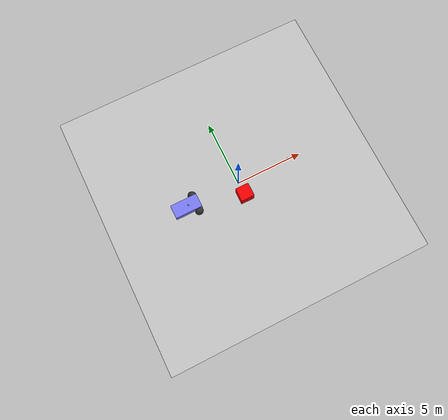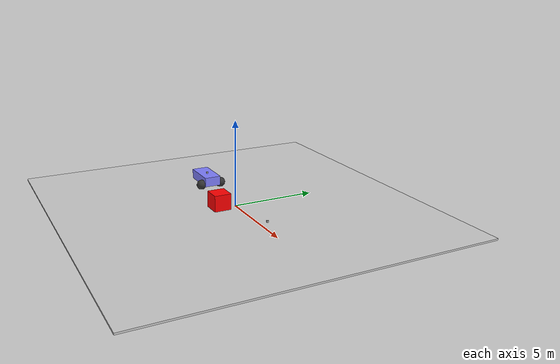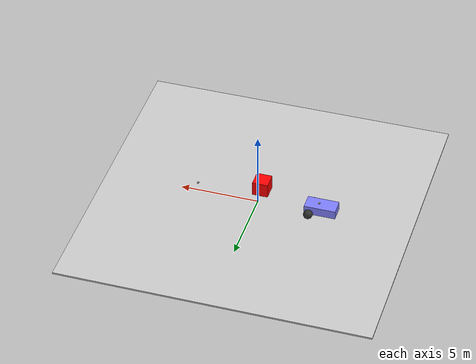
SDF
<?xml version="1.0" ?>
<!--
  You can echo lidar messages using:
    gz topic -e -t /lidar
-->
<sdf version="1.6">
  <world name="visualize_lidar_world">
    <physics name="1ms" type="ignored">
      <max_step_size>0.001</max_step_size>
      <real_time_factor>1.0</real_time_factor>
    </physics>
    <plugin filename="libignition-gazebo-physics-system" name="ignition::gazebo::systems::Physics">
    </plugin>
    <plugin filename="libignition-gazebo-sensors-system" name="ignition::gazebo::systems::Sensors">
      <render_engine>ogre2</render_engine>
    </plugin>
    <plugin filename="libignition-gazebo-scene-broadcaster-system" name="ignition::gazebo::systems::SceneBroadcaster">
    </plugin>

    <gui fullscreen="0">

      <!-- 3D scene -->
      <plugin filename="MinimalScene" name="3D View">
        <gz-gui>
          <title>3D View</title>
          <property type="bool" key="showTitleBar">false</property>
          <property type="string" key="state">docked</property>
        </gz-gui>

        <engine>ogre2</engine>
        <scene>scene</scene>
        <ambient_light>0.4 0.4 0.4</ambient_light>
        <background_color>0.8 0.8 0.8</background_color>
        <camera_pose>-6 0 6 0 0.5 0</camera_pose>
      </plugin>

      <!-- Plugins that add functionality to the scene -->
      <plugin filename="EntityContextMenuPlugin" name="Entity context menu">
        <gz-gui>
          <property key="state" type="string">floating</property>
          <property key="width" type="double">5</property>
          <property key="height" type="double">5</property>
          <property key="showTitleBar" type="bool">false</property>
        </gz-gui>
      </plugin>
      <plugin filename="GzSceneManager" name="Scene Manager">
        <gz-gui>
          <property key="resizable" type="bool">false</property>
          <property key="width" type="double">5</property>
          <property key="height" type="double">5</property>
          <property key="state" type="string">floating</property>
          <property key="showTitleBar" type="bool">false</property>
        </gz-gui>
      </plugin>
      <plugin filename="InteractiveViewControl" name="Interactive view control">
        <gz-gui>
          <property key="resizable" type="bool">false</property>
          <property key="width" type="double">5</property>
          <property key="height" type="double">5</property>
          <property key="state" type="string">floating</property>
          <property key="showTitleBar" type="bool">false</property>
        </gz-gui>
      </plugin>
      <plugin filename="CameraTracking" name="Camera Tracking">
        <gz-gui>
          <property key="resizable" type="bool">false</property>
          <property key="width" type="double">5</property>
          <property key="height" type="double">5</property>
          <property key="state" type="string">floating</property>
          <property key="showTitleBar" type="bool">false</property>
        </gz-gui>
      </plugin>
      <!-- World control -->
      <plugin filename="WorldControl" name="World control">
        <gz-gui>
          <title>World control</title>
          <property type="bool" key="showTitleBar">false</property>
          <property type="bool" key="resizable">false</property>
          <property type="double" key="height">72</property>
          <property type="double" key="width">121</property>
          <property type="double" key="z">1</property>

          <property type="string" key="state">floating</property>
          <anchors target="3D View">
            <line own="left" target="left"/>
            <line own="bottom" target="bottom"/>
          </anchors>
        </gz-gui>

        <play_pause>true</play_pause>
        <step>true</step>
        <start_paused>true</start_paused>
        <use_event>true</use_event>

      </plugin>

      <!-- World statistics -->
      <plugin filename="WorldStats" name="World stats">
        <gz-gui>
          <title>World stats</title>
          <property type="bool" key="showTitleBar">false</property>
          <property type="bool" key="resizable">false</property>
          <property type="double" key="height">110</property>
          <property type="double" key="width">290</property>
          <property type="double" key="z">1</property>

          <property type="string" key="state">floating</property>
          <anchors target="3D View">
            <line own="right" target="right"/>
            <line own="bottom" target="bottom"/>
          </anchors>
        </gz-gui>

        <sim_time>true</sim_time>
        <real_time>true</real_time>
        <real_time_factor>true</real_time_factor>
        <iterations>true</iterations>
      </plugin>

      <plugin filename="VisualizeLidar" name="Visualize Lidar">
      </plugin>

      <!-- Inspector -->
      <plugin filename="ComponentInspector" name="Component inspector">
        <gz-gui>
          <property type="string" key="state">docked</property>
        </gz-gui>
      </plugin>

      <!-- Entity tree -->
      <plugin filename="EntityTree" name="Entity tree">
        <gz-gui>
          <property type="string" key="state">docked</property>
        </gz-gui>
      </plugin>
    </gui>

    <light type="directional" name="sun">
      <cast_shadows>true</cast_shadows>
      <pose>0 0 10 0 0 0</pose>
      <diffuse>0.8 0.8 0.8 1</diffuse>
      <specular>0.2 0.2 0.2 1</specular>
      <attenuation>
        <range>1000</range>
        <constant>0.9</constant>
        <linear>0.01</linear>
        <quadratic>0.001</quadratic>
      </attenuation>
      <direction>-0.5 0.1 -0.9</direction>
    </light>

    <model name="ground_plane">
      <static>true</static>
      <link name="link">
        <collision name="collision">
          <geometry>
            <box>
              <size>20 20 0.1</size>
            </box>
          </geometry>
          <surface>
            <friction>
              <ode>
                <mu>1000</mu>
                <mu2>1000</mu2>
                <slip1>0</slip1>
                <slip2>0</slip2>
              </ode>
            </friction>
            <contact>
              <ode>
                <soft_cfm>0</soft_cfm>
                <soft_erp>0.2</soft_erp>
                <kp>1e+13</kp>
                <kd>1</kd>
                <max_vel>0.01</max_vel>
                <min_depth>0.01</min_depth>
              </ode>
            </contact>
          </surface>
        </collision>
        <visual name="visual">
          <geometry>
            <box>
              <size>20 20 0.1</size>
            </box>
          </geometry>
          <material>
            <ambient>0.8 0.8 0.8 1</ambient>
            <diffuse>0.8 0.8 0.8 1</diffuse>
            <specular>0.8 0.8 0.8 1</specular>
          </material>
        </visual>
      </link>
    </model>

    <model name="box">
      <pose>0 -1 0.5 0 0 0</pose>
      <link name="box_link">
        <inertial>
          <inertia>
            <ixx>1</ixx>
            <ixy>0</ixy>
            <ixz>0</ixz>
            <iyy>1</iyy>
            <iyz>0</iyz>
            <izz>1</izz>
          </inertia>
          <mass>1.0</mass>
        </inertial>
        <collision name="box_collision">
          <geometry>
            <box>
              <size>1 1 1</size>
            </box>
          </geometry>
        </collision>

        <visual name="box_visual">
          <geometry>
            <box>
              <size>1 1 1</size>
            </box>
          </geometry>
          <material>
            <ambient>1 0 0 1</ambient>
            <diffuse>1 0 0 1</diffuse>
            <specular>1 0 0 1</specular>
          </material>
        </visual>
      </link>
    </model>

    <model name="model_with_lidar">
      <pose>4 0 0.5 0 0.0 3.14</pose>
      <link name="link">
        <pose>0.05 0.05 0.05 0 0 0</pose>
        <inertial>
          <mass>0.1</mass>
          <inertia>
            <ixx>0.000166667</ixx>
            <iyy>0.000166667</iyy>
            <izz>0.000166667</izz>
          </inertia>
        </inertial>
        <collision name="collision">
          <geometry>
            <box>
              <size>0.1 0.1 0.1</size>
            </box>
          </geometry>
        </collision>
        <visual name="visual">
          <geometry>
            <box>
              <size>0.1 0.1 0.1</size>
            </box>
          </geometry>
        </visual>

        <sensor name='gpu_lidar' type='gpu_lidar'>
          <topic>lidar</topic>
          <update_rate>10</update_rate>
          <lidar>
            <scan>
              <horizontal>
                <samples>640</samples>
                <resolution>1</resolution>
                <min_angle>-1.396263</min_angle>
                <max_angle>1.396263</max_angle>
              </horizontal>
              <vertical>
                <samples>16</samples>
                <resolution>1</resolution>
                <min_angle>-0.261799</min_angle>
                <max_angle>0.261799</max_angle>
              </vertical>
            </scan>
            <range>
              <min>0.08</min>
              <max>10.0</max>
              <resolution>0.01</resolution>
            </range>
          </lidar>
          <alwaysOn>1</alwaysOn>
          <visualize>true</visualize>
        </sensor>
      </link>
      <static>true</static>
    </model>

    <model name='vehicle_blue'>
      <pose>-4 0 0.325 0 0 0.0</pose>
      <link name='chassis'>
        <pose>-0.151427 -0 0.175 0 -0 0</pose>
        <inertial>
          <mass>1.14395</mass>
          <inertia>
            <ixx>0.126164</ixx>
            <ixy>0</ixy>
            <ixz>0</ixz>
            <iyy>0.416519</iyy>
            <iyz>0</iyz>
            <izz>0.481014</izz>
          </inertia>
        </inertial>
        <visual name='visual'>
          <geometry>
            <box>
              <size>2.01142 1 0.568726</size>
            </box>
          </geometry>
          <material>
            <ambient>0.5 0.5 1.0 1</ambient>
            <diffuse>0.5 0.5 1.0 1</diffuse>
            <specular>0.0 0.0 1.0 1</specular>
          </material>
        </visual>
        <collision name='collision'>
          <geometry>
            <box>
              <size>2.01142 1 0.568726</size>
            </box>
          </geometry>
        </collision>
      </link>

      <link name="lidar_link">
        <pose>0 0 0.5 0 0 0</pose>
        <inertial>
          <mass>0.1</mass>
          <inertia>
            <ixx>0.000166667</ixx>
            <iyy>0.000166667</iyy>
            <izz>0.000166667</izz>
          </inertia>
        </inertial>
        <collision name="collision">
          <geometry>
            <box>
              <size>0.1 0.1 0.1</size>
            </box>
          </geometry>
        </collision>
        <visual name="visual">
          <geometry>
            <box>
              <size>0.1 0.1 0.1</size>
            </box>
          </geometry>
        </visual>
        <sensor name='gpu_lidar' type='gpu_lidar'>
          <pose>0 0 0 0 0 0</pose>
          <topic>lidar2</topic>
          <update_rate>10</update_rate>
          <lidar>
            <scan>
              <horizontal>
                <samples>640</samples>
                <resolution>1</resolution>
                <min_angle>-1.396263</min_angle>
                <max_angle>1.396263</max_angle>
              </horizontal>
              <vertical>
                <samples>1</samples>
                <resolution>1</resolution>
                <min_angle>0.0</min_angle>
                <max_angle>0.0</max_angle>
              </vertical>
            </scan>
            <range>
              <min>0.08</min>
              <max>10.0</max>
              <resolution>0.01</resolution>
            </range>
          </lidar>
          <alwaysOn>1</alwaysOn>
          <visualize>true</visualize>
        </sensor>
      </link>

      <link name='left_wheel'>
        <pose>0.554283 0.625029 -0.025 -1.5707 0 0</pose>
        <inertial>
          <mass>2</mass>
          <inertia>
            <ixx>0.145833</ixx>
            <ixy>0</ixy>
            <ixz>0</ixz>
            <iyy>0.145833</iyy>
            <iyz>0</iyz>
            <izz>0.125</izz>
          </inertia>
        </inertial>
        <visual name='visual'>
          <geometry>
            <sphere>
              <radius>0.3</radius>
            </sphere>
          </geometry>
          <material>
            <ambient>0.2 0.2 0.2 1</ambient>
            <diffuse>0.2 0.2 0.2 1</diffuse>
            <specular>0.2 0.2 0.2 1</specular>
          </material>
        </visual>
        <collision name='collision'>
          <geometry>
            <sphere>
              <radius>0.3</radius>
            </sphere>
          </geometry>
          <surface>
            <friction>
              <ode>
                <mu>1000</mu>
                <mu2>1000</mu2>
                <slip1>0</slip1>
                <slip2>0</slip2>
              </ode>
            </friction>
            <contact>
              <ode>
                <soft_cfm>0</soft_cfm>
                <soft_erp>0.2</soft_erp>
                <kp>1e+13</kp>
                <kd>1</kd>
                <max_vel>0.01</max_vel>
                <min_depth>0.01</min_depth>
              </ode>
            </contact>
          </surface>
        </collision>
      </link>

      <link name='right_wheel'>
        <pose>0.554282 -0.625029 -0.025 -1.5707 0 0</pose>
        <inertial>
          <mass>2</mass>
          <inertia>
            <ixx>0.145833</ixx>
            <ixy>0</ixy>
            <ixz>0</ixz>
            <iyy>0.145833</iyy>
            <iyz>0</iyz>
            <izz>0.125</izz>
          </inertia>
        </inertial>
        <visual name='visual'>
          <geometry>
            <sphere>
              <radius>0.3</radius>
            </sphere>
          </geometry>
          <material>
            <ambient>0.2 0.2 0.2 1</ambient>
            <diffuse>0.2 0.2 0.2 1</diffuse>
            <specular>0.2 0.2 0.2 1</specular>
          </material>
        </visual>
        <collision name='collision'>
          <geometry>
            <sphere>
              <radius>0.3</radius>
            </sphere>
          </geometry>
          <surface>
            <friction>
              <ode>
                <mu>1000</mu>
                <mu2>1000</mu2>
                <slip1>0</slip1>
                <slip2>0</slip2>
              </ode>
            </friction>
            <contact>
              <ode>
                <soft_cfm>0</soft_cfm>
                <soft_erp>0.2</soft_erp>
                <kp>1e+13</kp>
                <kd>1</kd>
                <max_vel>0.01</max_vel>
                <min_depth>0.01</min_depth>
              </ode>
            </contact>
          </surface>
        </collision>
      </link>

      <link name='caster'>
        <pose>-0.957138 -0 -0.125 0 -0 0</pose>
        <inertial>
          <mass>1</mass>
          <inertia>
            <ixx>0.1</ixx>
            <ixy>0</ixy>
            <ixz>0</ixz>
            <iyy>0.1</iyy>
            <iyz>0</iyz>
            <izz>0.1</izz>
          </inertia>
        </inertial>
        <visual name='visual'>
          <geometry>
            <sphere>
              <radius>0.2</radius>
            </sphere>
          </geometry>
          <material>
            <ambient>0.2 0.2 0.2 1</ambient>
            <diffuse>0.2 0.2 0.2 1</diffuse>
            <specular>0.2 0.2 0.2 1</specular>
          </material>
        </visual>
        <collision name='collision'>
          <geometry>
            <sphere>
              <radius>0.2</radius>
            </sphere>
          </geometry>
          <surface>
            <friction>
              <ode>
                <mu>1000</mu>
                <mu2>1000</mu2>
                <slip1>0</slip1>
                <slip2>0</slip2>
              </ode>
            </friction>
            <contact>
              <ode>
                <soft_cfm>0</soft_cfm>
                <soft_erp>0.2</soft_erp>
                <kp>1e+13</kp>
                <kd>1</kd>
                <max_vel>0.01</max_vel>
                <min_depth>0.01</min_depth>
              </ode>
            </contact>
          </surface>
        </collision>
      </link>

      <joint name='lidar_sensor_joint' type='fixed'>
        <parent>chassis</parent>
        <child>lidar_link</child>
      </joint>

      <joint name='left_wheel_joint' type='revolute'>
        <parent>chassis</parent>
        <child>left_wheel</child>
        <axis>
          <xyz>0 0 1</xyz>
          <limit>
            <lower>-1.79769e+308</lower>
            <upper>1.79769e+308</upper>
          </limit>
        </axis>
      </joint>

      <joint name='right_wheel_joint' type='revolute'>
        <parent>chassis</parent>
        <child>right_wheel</child>
        <axis>
          <xyz>0 0 1</xyz>
          <limit>
            <lower>-1.79769e+308</lower>
            <upper>1.79769e+308</upper>
          </limit>
        </axis>
      </joint>

      <joint name='caster_wheel' type='ball'>
        <parent>chassis</parent>
        <child>caster</child>
      </joint>

      <plugin filename="libignition-gazebo-diff-drive-system.so" name="ignition::gazebo::systems::DiffDrive">
        <left_joint>left_wheel_joint</left_joint>
        <right_joint>right_wheel_joint</right_joint>
        <wheel_separation>1.25</wheel_separation>
        <wheel_radius>0.3</wheel_radius>
        <odom_publish_frequency>1</odom_publish_frequency>
      </plugin>
    </model>

  </world>
</sdf>
